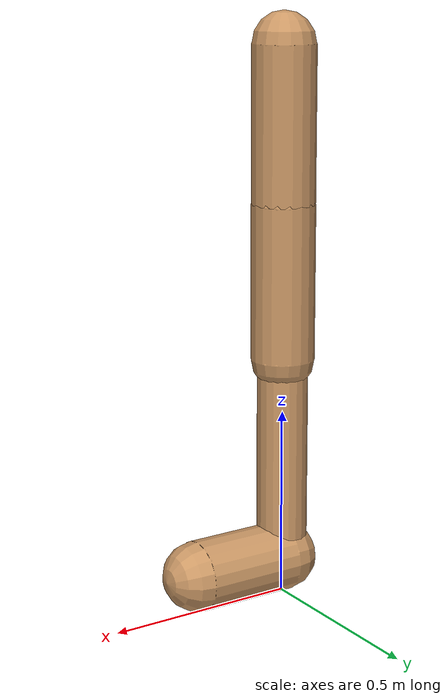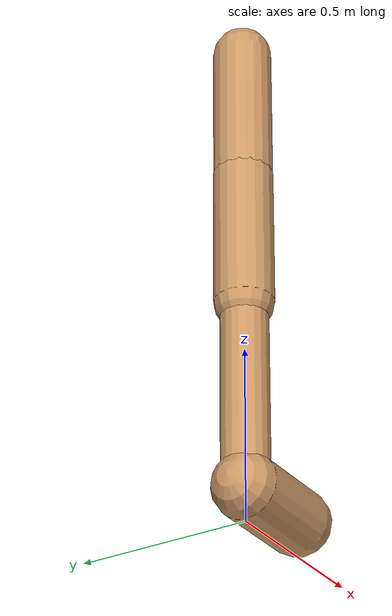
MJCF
<mujoco model="walker2d">
  <compiler angle="degree" coordinate="global" inertiafromgeom="true" />
  <default>
    <joint armature="0.01" damping=".1" limited="true" />
    <geom conaffinity="0" condim="3" contype="1" density="1000" friction="0.8 .1 .1" rgba="0.8 0.6 .4 1" />
  </default>
  <option integrator="RK4" timestep="0.002" />
  <worldbody>

    <body name="torso" pos="0 0 -0.09570903983650454">
      <joint armature="0" axis="1 0 0" damping="0" limited="false" name="ignorex" pos="0 0 0" stiffness="0" type="slide" />
      <joint armature="0" axis="0 0 1" damping="0" limited="false" name="ignorez" pos="0 0 0" ref="1.25" stiffness="0" type="slide" />
      <joint armature="0" axis="0 1 0" damping="0" limited="false" name="ignorey" pos="0 0 0" stiffness="0" type="hinge" />
      <geom fromto="0 0 1.45 0 0 1.05" name="torso_geom" size="0.08227889992374125" type="capsule" />
      <body name="thigh">
        <joint axis="0 -1 0" name="thigh_joint" pos="0 0 1.05" range="-150 0" type="hinge" />
        <geom fromto="0.0 0.0 1.05 0.0 0.0 0.6453358609751864" name="thigh_geom" size="0.08294838959809692" type="capsule" />
        <body name="leg" pos="0.0 0.0 0.04533586097518638">
          <joint axis="0 -1 0" name="leg_joint" pos="0 0 0.6" range="-150 0" type="hinge" />
          <geom fromto="0.0 0.0 0.6 0.0 0.0 0.15037317886131818" name="leg_geom" size="0.06635871167847754" type="capsule" />
          <body name="foot" pos="0.0 0.0 0.050373178861318174">
            <joint axis="0 -1 0" name="foot_joint" pos="0 0 0.1" range="-45 45" type="hinge" />
            <geom fromto="-0.0 0.0 0.09999999999999999 0.26264627652539185 0.0 0.09999999999999999" name="foot_geom" size="0.09236889676049005" type="capsule" />
          </body>
        </body>
      </body>

      <body name="thigh_left">
        <joint axis="0 -1 0" name="thigh_left_joint" pos="0 0 1.05" range="-150 0" type="hinge" />
        <geom fromto="0.0 0.0 1.05 0.0 0.0 0.6453358609751864" name="thigh_left_geom" rgba=".7 .3 .6 1" size="0.08294838959809692" type="capsule" />
        <body name="leg_left" pos="0.0 0.0 0.04533586097518638">
          <joint axis="0 -1 0" name="leg_left_joint" pos="0 0 0.6" range="-150 0" type="hinge" />
          <geom fromto="0.0 0.0 0.6 0.0 0.0 0.15037317886131818" name="leg_left_geom" rgba=".7 .3 .6 1" size="0.06635871167847754" type="capsule" />
          <body name="foot_left" pos="0.0 0.0 0.050373178861318174">
            <joint axis="0 -1 0" name="foot_left_joint" pos="0 0 0.1" range="-45 45" type="hinge" />
            <geom fromto="-0.0 0.0 0.09999999999999999 0.26264627652539185 0.0 0.09999999999999999" name="foot_left_geom" rgba=".7 .3 .6 1" size="0.09236889676049005" type="capsule" />
          </body>
        </body>
      </body>
    </body>
  </worldbody>
  <actuator>

    <motor ctrllimited="true" ctrlrange="-1.0 1.0" gear="100" joint="thigh_joint" />
    <motor ctrllimited="true" ctrlrange="-1.0 1.0" gear="100" joint="leg_joint" />
    <motor ctrllimited="true" ctrlrange="-1.0 1.0" gear="100" joint="foot_joint" />
    <motor ctrllimited="true" ctrlrange="-1.0 1.0" gear="100" joint="thigh_left_joint" />
    <motor ctrllimited="true" ctrlrange="-1.0 1.0" gear="100" joint="leg_left_joint" />
    <motor ctrllimited="true" ctrlrange="-1.0 1.0" gear="100" joint="foot_left_joint" />

  </actuator>
</mujoco>
